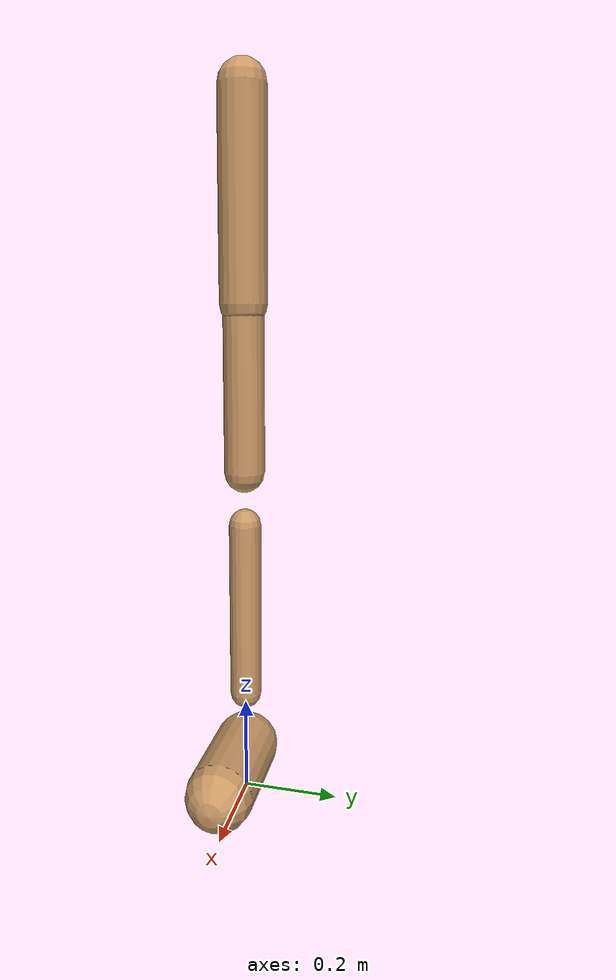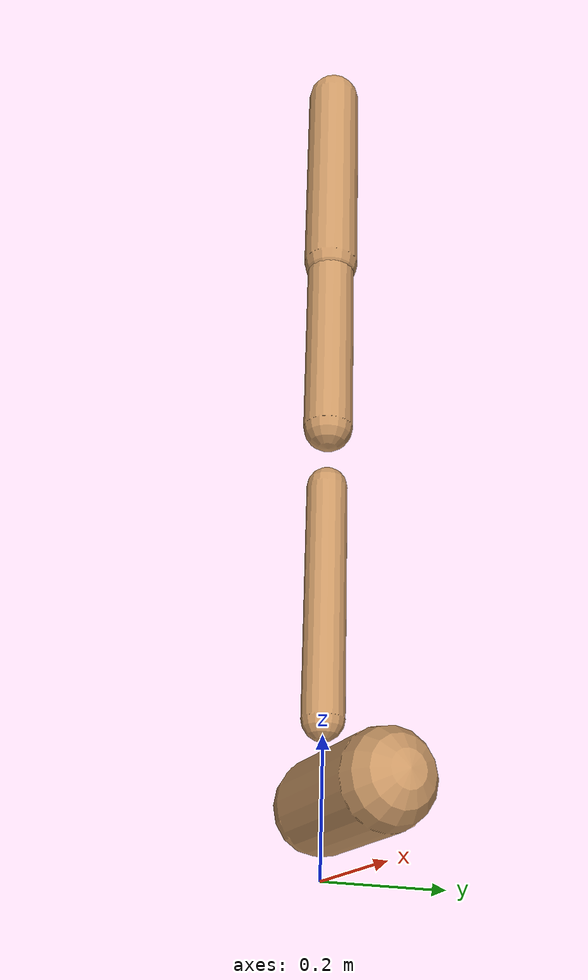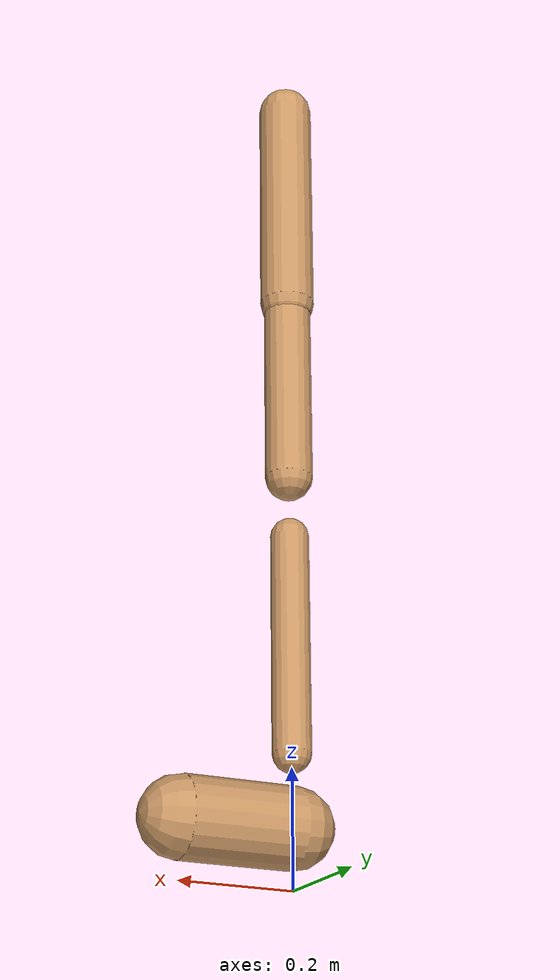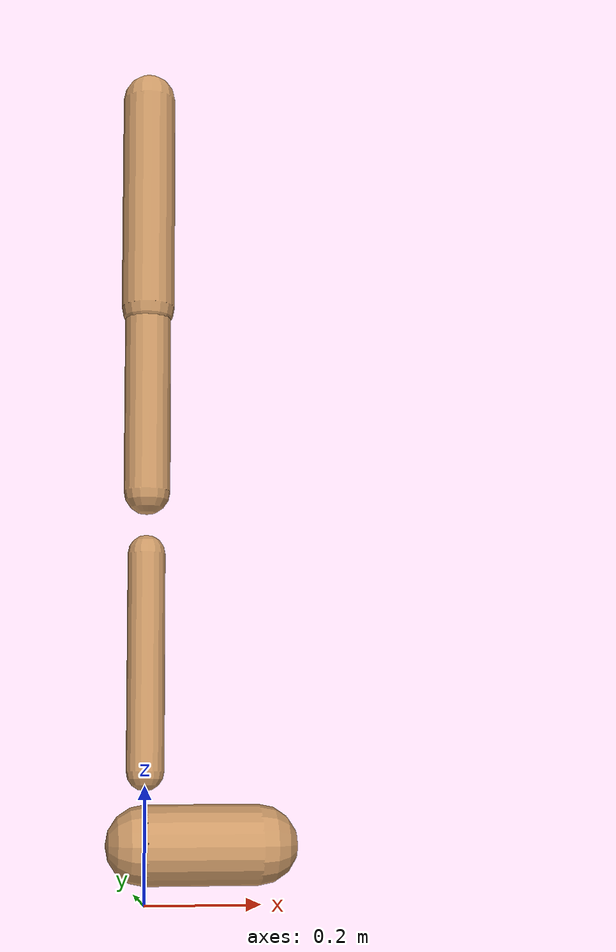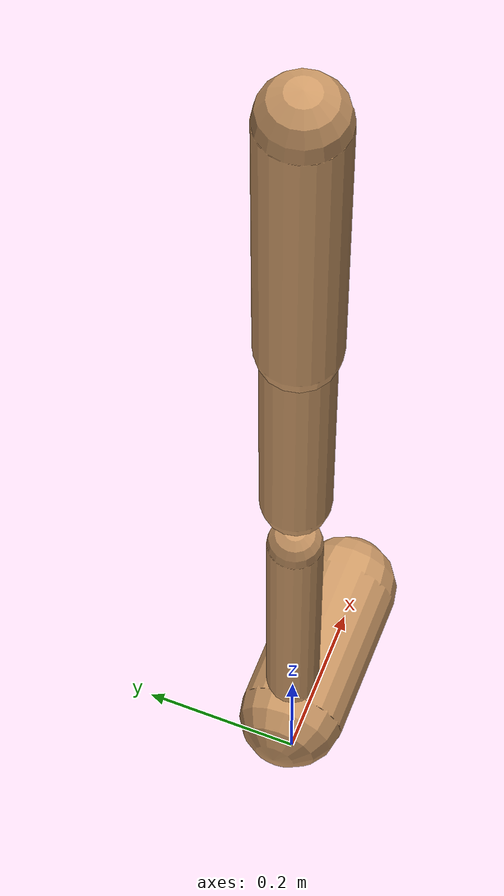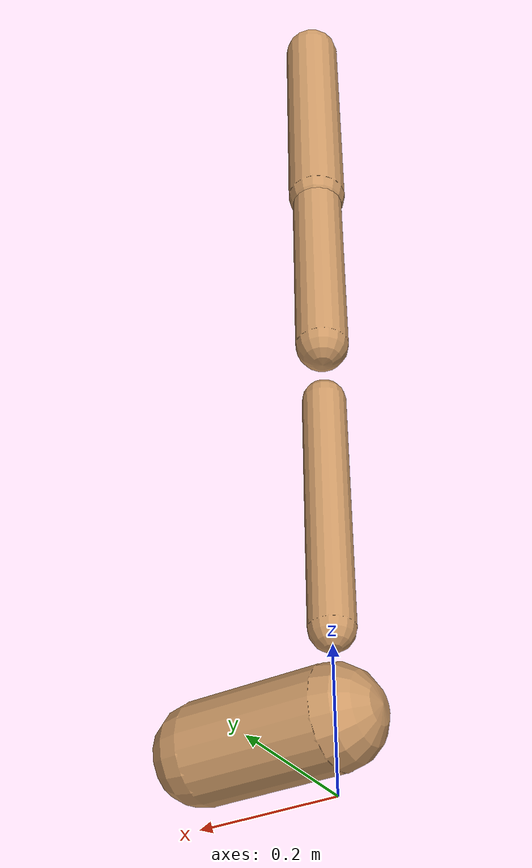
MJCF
<mujoco model="walker2d">
  <compiler angle="degree" coordinate="global" inertiafromgeom="true" />
  <default>
    <joint armature="0.01" damping=".1" limited="true" />
    <geom conaffinity="0" condim="3" contype="1" density="1000" friction="0.8 .1 .1" rgba="0.8 0.6 .4 1" />
  </default>
  <option integrator="RK4" timestep="0.002" />
  <worldbody>

    <body name="torso" pos="0 0 -0.23490610381996946">
      <joint armature="0" axis="1 0 0" damping="0" limited="false" name="ignorex" pos="0 0 0" stiffness="0" type="slide" />
      <joint armature="0" axis="0 0 1" damping="0" limited="false" name="ignorez" pos="0 0 0" ref="1.25" stiffness="0" type="slide" />
      <joint armature="0" axis="0 1 0" damping="0" limited="false" name="ignorey" pos="0 0 0" stiffness="0" type="hinge" />
      <geom fromto="0 0 1.45 0 0 1.05" name="torso_geom" size="0.047959185266131896" type="capsule" />
      <body name="thigh">
        <joint axis="0 -1 0" name="thigh_joint" pos="0 0 1.05" range="-150 0" type="hinge" />
        <geom fromto="0.0 0.0 1.05 0.0 0.0 0.711271312335775" name="thigh_geom" size="0.04139766432923703" type="capsule" />
        <body name="leg" pos="0.0 0.0 0.11127131233577503">
          <joint axis="0 -1 0" name="leg_joint" pos="0 0 0.6" range="-150 0" type="hinge" />
          <geom fromto="0.0 0.0 0.6 0.0 0.0 0.22363479148419446" name="leg_geom" size="0.03311813146338962" type="capsule" />
          <body name="foot" pos="0.0 0.0 0.12363479148419446">
            <joint axis="0 -1 0" name="foot_joint" pos="0 0 0.1" range="-45 45" type="hinge" />
            <geom fromto="0.0 0.0 0.1 0.19678583279069686 0.0 0.1" name="foot_geom" size="0.06808189901573142" type="capsule" />
          </body>
        </body>
      </body>

      <body name="thigh_left">
        <joint axis="0 -1 0" name="thigh_left_joint" pos="0 0 1.05" range="-150 0" type="hinge" />
        <geom fromto="0.0 0.0 1.05 0.0 0.0 0.711271312335775" name="thigh_left_geom" rgba=".7 .3 .6 1" size="0.04139766432923703" type="capsule" />
        <body name="leg_left" pos="0.0 0.0 0.11127131233577503">
          <joint axis="0 -1 0" name="leg_left_joint" pos="0 0 0.6" range="-150 0" type="hinge" />
          <geom fromto="0.0 0.0 0.6 0.0 0.0 0.22363479148419446" name="leg_left_geom" rgba=".7 .3 .6 1" size="0.03311813146338962" type="capsule" />
          <body name="foot_left" pos="0.0 0.0 0.12363479148419446">
            <joint axis="0 -1 0" name="foot_left_joint" pos="0 0 0.1" range="-45 45" type="hinge" />
            <geom fromto="0.0 0.0 0.1 0.19678583279069686 0.0 0.1" name="foot_left_geom" rgba=".7 .3 .6 1" size="0.06808189901573142" type="capsule" />
          </body>
        </body>
      </body>
    </body>
  </worldbody>
  <actuator>

    <motor ctrllimited="true" ctrlrange="-1.0 1.0" gear="100" joint="thigh_joint" />
    <motor ctrllimited="true" ctrlrange="-1.0 1.0" gear="100" joint="leg_joint" />
    <motor ctrllimited="true" ctrlrange="-1.0 1.0" gear="100" joint="foot_joint" />
    <motor ctrllimited="true" ctrlrange="-1.0 1.0" gear="100" joint="thigh_left_joint" />
    <motor ctrllimited="true" ctrlrange="-1.0 1.0" gear="100" joint="leg_left_joint" />
    <motor ctrllimited="true" ctrlrange="-1.0 1.0" gear="100" joint="foot_left_joint" />

  </actuator>
</mujoco>
